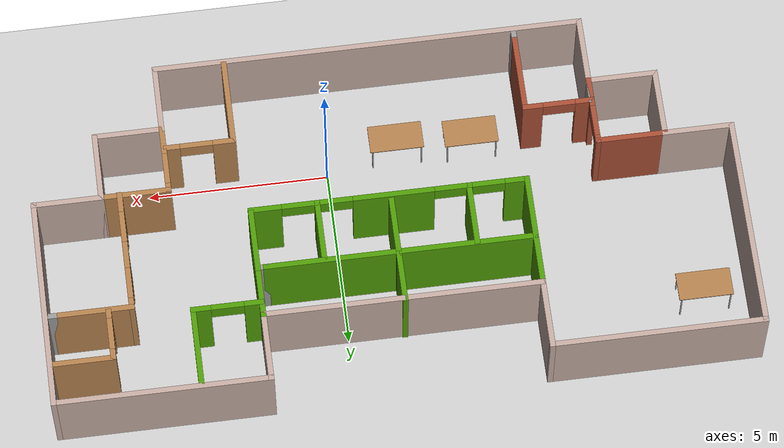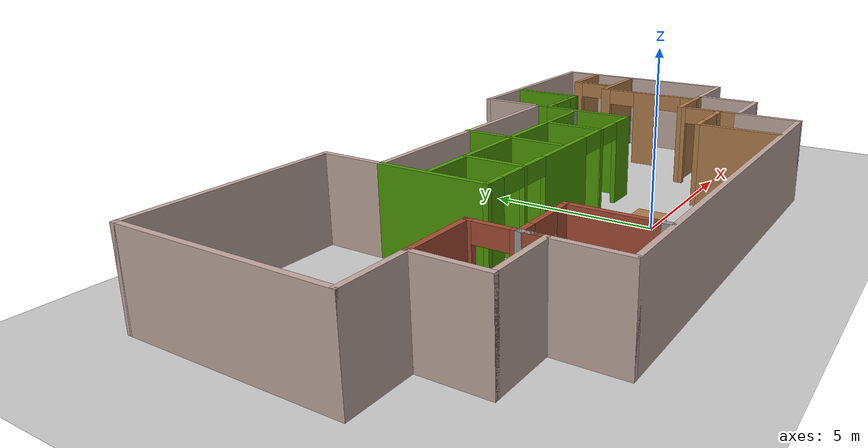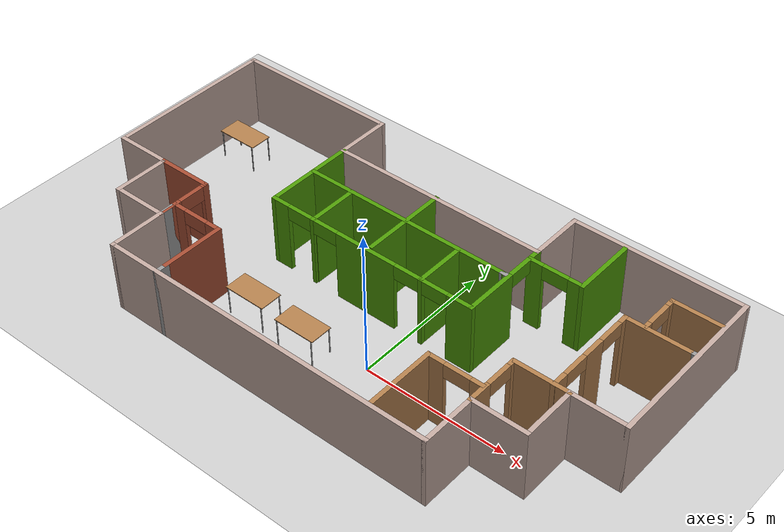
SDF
<sdf version="1.6">
 <world name="default">
  <model name="ground_plane">
   <static>1</static>
   <link name="link">
    <collision name="collision">
     <geometry><plane><normal>0 0 1</normal><size>100 100</size></plane></geometry>
     <surface>
      <contact><collide_bitmask>65535</collide_bitmask></contact>
      <friction><ode><mu>100</mu><mu2>50</mu2></ode></friction>
     </surface>
    </collision>
    <visual name="visual">
     <cast_shadows>0</cast_shadows>
     <geometry><plane><normal>0 0 1</normal><size>100 100</size></plane></geometry>
     <material>
      <script><uri>file://media/materials/scripts/gazebo.material</uri><name>Gazebo/Grey</name></script>
     </material>
    </visual>
   </link>
  </model>
  <model name="office">
   <pose>-1.48529 2.04777 0 0 -0 0</pose>
   <link name="Wall_10">
    <collision name="Wall_10_Collision">
     <geometry><box><size>2 0.15 2.5</size></box></geometry>
     <pose>0 0 1.25 0 -0 0</pose>
    </collision>
    <visual name="Wall_10_Visual">
     <pose>0 0 1.25 0 -0 0</pose>
     <geometry><box><size>2 0.15 2.5</size></box></geometry>
     <material>
      <script><uri>file://media/materials/scripts/gazebo.material</uri><name>Gazebo/Grey</name></script>
      <ambient>0.760784 0.662745 0.627451 1</ambient>
     </material>
     <meta><layer>0</layer></meta>
    </visual>
    <pose>6.85 -2.925 0 0 -0 0</pose>
   </link>
   <link name="Wall_11">
    <collision name="Wall_11_Collision">
     <geometry><box><size>2 0.15 2.5</size></box></geometry>
     <pose>0 0 1.25 0 -0 0</pose>
    </collision>
    <visual name="Wall_11_Visual">
     <pose>0 0 1.25 0 -0 0</pose>
     <geometry><box><size>2 0.15 2.5</size></box></geometry>
     <material>
      <script><uri>file://media/materials/scripts/gazebo.material</uri><name>Gazebo/Grey</name></script>
      <ambient>0.760784 0.662745 0.627451 1</ambient>
     </material>
     <meta><layer>0</layer></meta>
    </visual>
    <pose>7.775 -2 0 0 -0 1.5708</pose>
   </link>
   <link name="Wall_12">
    <collision name="Wall_12_Collision">
     <geometry><box><size>2 0.15 2.5</size></box></geometry>
     <pose>0 0 1.25 0 -0 0</pose>
    </collision>
    <visual name="Wall_12_Visual">
     <pose>0 0 1.25 0 -0 0</pose>
     <geometry><box><size>2 0.15 2.5</size></box></geometry>
     <material>
      <script><uri>file://media/materials/scripts/gazebo.material</uri><name>Gazebo/Grey</name></script>
      <ambient>0.760784 0.662745 0.627451 1</ambient>
     </material>
     <meta><layer>0</layer></meta>
    </visual>
    <pose>8.7 -1.075 0 0 -0 0</pose>
   </link>
   <link name="Wall_13">
    <collision name="Wall_13_Collision">
     <geometry><box><size>6 0.15 2.5</size></box></geometry>
     <pose>0 0 1.25 0 -0 0</pose>
    </collision>
    <visual name="Wall_13_Visual">
     <pose>0 0 1.25 0 -0 0</pose>
     <geometry><box><size>6 0.15 2.5</size></box></geometry>
     <material>
      <script><uri>file://media/materials/scripts/gazebo.material</uri><name>Gazebo/Grey</name></script>
      <ambient>0.760784 0.662745 0.627451 1</ambient>
     </material>
     <meta><layer>0</layer></meta>
    </visual>
    <pose>9.625 1.85 0 0 -0 1.5708</pose>
   </link>
   <link name="Wall_14">
    <collision name="Wall_14_Collision">
     <geometry><box><size>6 0.15 2.5</size></box></geometry>
     <pose>0 0 1.25 0 -0 0</pose>
    </collision>
    <visual name="Wall_14_Visual">
     <pose>0 0 1.25 0 -0 0</pose>
     <geometry><box><size>6 0.15 2.5</size></box></geometry>
     <material>
      <script><uri>file://media/materials/scripts/gazebo.material</uri><name>Gazebo/Grey</name></script>
      <ambient>0.760784 0.662745 0.627451 1</ambient>
     </material>
     <meta><layer>0</layer></meta>
    </visual>
    <pose>6.7 4.775 0 0 -0 3.14159</pose>
   </link>
   <link name="Wall_15">
    <collision name="Wall_15_Collision">
     <geometry><box><size>2 0.15 2.5</size></box></geometry>
     <pose>0 0 1.25 0 -0 0</pose>
    </collision>
    <visual name="Wall_15_Visual">
     <pose>0 0 1.25 0 -0 0</pose>
     <geometry><box><size>2 0.15 2.5</size></box></geometry>
     <material>
      <script><uri>file://media/materials/scripts/gazebo.material</uri><name>Gazebo/Grey</name></script>
      <ambient>0.760784 0.662745 0.627451 1</ambient>
     </material>
     <meta><layer>0</layer></meta>
    </visual>
    <pose>3.775 3.85 0 0 -0 -1.5708</pose>
   </link>
   <link name="Wall_16">
    <collision name="Wall_16_Collision">
     <geometry><box><size>7.75 0.15 2.5</size></box></geometry>
     <pose>0 0 1.25 0 -0 0</pose>
    </collision>
    <visual name="Wall_16_Visual">
     <pose>0 0 1.25 0 -0 0</pose>
     <geometry><box><size>7.75 0.15 2.5</size></box></geometry>
     <material>
      <script><uri>file://media/materials/scripts/gazebo.material</uri><name>Gazebo/Grey</name></script>
      <ambient>0.760784 0.662745 0.627451 1</ambient>
     </material>
     <meta><layer>0</layer></meta>
    </visual>
    <pose>-0.025 2.925 0 0 -0 3.14159</pose>
   </link>
   <link name="Wall_17">
    <collision name="Wall_17_Collision">
     <geometry><box><size>2 0.15 2.5</size></box></geometry>
     <pose>0 0 1.25 0 -0 0</pose>
    </collision>
    <visual name="Wall_17_Visual">
     <pose>0 0 1.25 0 -0 0</pose>
     <geometry><box><size>2 0.15 2.5</size></box></geometry>
     <material>
      <script><uri>file://media/materials/scripts/gazebo.material</uri><name>Gazebo/Grey</name></script>
      <ambient>0.760784 0.662745 0.627451 1</ambient>
     </material>
     <meta><layer>0</layer></meta>
    </visual>
    <pose>-3.825 3.85 0 0 -0 1.5708</pose>
   </link>
   <link name="Wall_18">
    <collision name="Wall_18_Collision">
     <geometry><box><size>5.95 0.15 2.5</size></box></geometry>
     <pose>0 0 1.25 0 -0 0</pose>
    </collision>
    <visual name="Wall_18_Visual">
     <pose>0 0 1.25 0 -0 0</pose>
     <geometry><box><size>5.95 0.15 2.5</size></box></geometry>
     <material>
      <script><uri>file://media/materials/scripts/gazebo.material</uri><name>Gazebo/Grey</name></script>
      <ambient>0.760784 0.662745 0.627451 1</ambient>
     </material>
     <meta><layer>0</layer></meta>
    </visual>
    <pose>-6.725 4.775 0 0 -0 3.14159</pose>
   </link>
   <link name="Wall_19">
    <collision name="Wall_19_Collision">
     <geometry><box><size>0.15 0.15 2.5</size></box></geometry>
     <pose>0 0 1.25 0 -0 0</pose>
    </collision>
    <visual name="Wall_19_Visual">
     <pose>0 0 1.25 0 -0 0</pose>
     <geometry><box><size>0.15 0.15 2.5</size></box></geometry>
     <material>
      <script><uri>file://media/materials/scripts/gazebo.material</uri><name>Gazebo/Grey</name></script>
      <ambient>0.760784 0.662745 0.627451 1</ambient>
     </material>
     <meta><layer>0</layer></meta>
    </visual>
    <pose>-9.625 4.775 0 0 -0 0</pose>
   </link>
   <link name="Wall_2">
    <collision name="Wall_2_Collision">
     <geometry><box><size>6 0.15 2.5</size></box></geometry>
     <pose>0 0 1.25 0 -0 0</pose>
    </collision>
    <visual name="Wall_2_Visual">
     <pose>0 0 1.25 0 -0 0</pose>
     <geometry><box><size>6 0.15 2.5</size></box></geometry>
     <material>
      <script><uri>file://media/materials/scripts/gazebo.material</uri><name>Gazebo/Grey</name></script>
      <ambient>0.760784 0.662745 0.627451 1</ambient>
     </material>
     <meta><layer>0</layer></meta>
    </visual>
    <pose>-9.625 1.85 0 0 -0 -1.5708</pose>
   </link>
   <link name="Wall_21">
    <collision name="Wall_21_Collision">
     <geometry><box><size>2 0.15 2.5</size></box></geometry>
     <pose>0 0 1.25 0 -0 0</pose>
    </collision>
    <visual name="Wall_21_Visual">
     <pose>0 0 1.25 0 -0 0</pose>
     <geometry><box><size>2 0.15 2.5</size></box></geometry>
     <material>
      <script><uri>file://media/materials/scripts/gazebo.material</uri><name>Gazebo/Bricks</name></script>
      <ambient>1 0.764706 0.305882 1</ambient>
     </material>
     <meta><layer>0</layer></meta>
    </visual>
    <pose>-6.85 -1.075 0 0 -0 0</pose>
   </link>
   <link name="Wall_22">
    <pose>-5.925 -2 0 0 -0 -1.5708</pose>
    <visual name="Wall_22_Visual_0">
     <pose>-0.880847 0 1.25 0 -0 0</pose>
     <geometry><box><size>0.238307 0.15 2.5</size></box></geometry>
     <material>
      <script><uri>file://media/materials/scripts/gazebo.material</uri><name>Gazebo/Bricks</name></script>
      <ambient>1 0.764706 0.305882 1</ambient>
     </material>
     <meta><layer>0</layer></meta>
    </visual>
    <collision name="Wall_22_Collision_0">
     <geometry><box><size>0.238307 0.15 2.5</size></box></geometry>
     <pose>-0.880847 0 1.25 0 -0 0</pose>
    </collision>
    <visual name="Wall_22_Visual_1">
     <pose>0.569153 0 1.25 0 -0 0</pose>
     <geometry><box><size>0.861693 0.15 2.5</size></box></geometry>
     <material>
      <script><uri>file://media/materials/scripts/gazebo.material</uri><name>Gazebo/Bricks</name></script>
      <ambient>1 0.764706 0.305882 1</ambient>
     </material>
     <meta><layer>0</layer></meta>
    </visual>
    <collision name="Wall_22_Collision_1">
     <geometry><box><size>0.861693 0.15 2.5</size></box></geometry>
     <pose>0.569153 0 1.25 0 -0 0</pose>
    </collision>
    <visual name="Wall_22_Visual_2">
     <pose>-0.311693 0 2.25 0 -0 0</pose>
     <geometry><box><size>0.9 0.15 0.5</size></box></geometry>
     <material>
      <script><uri>file://media/materials/scripts/gazebo.material</uri><name>Gazebo/Bricks</name></script>
      <ambient>1 0.764706 0.305882 1</ambient>
     </material>
     <meta><layer>0</layer></meta>
    </visual>
    <collision name="Wall_22_Collision_2">
     <geometry><box><size>0.9 0.15 0.5</size></box></geometry>
     <pose>-0.311693 0 2.25 0 -0 0</pose>
    </collision>
   </link>
   <link name="Wall_23">
    <collision name="Wall_23_Collision">
     <geometry><box><size>0.75 0.15 2.5</size></box></geometry>
     <pose>0 0 1.25 0 -0 0</pose>
    </collision>
    <visual name="Wall_23_Visual">
     <pose>0 0 1.25 0 -0 0</pose>
     <geometry><box><size>0.75 0.15 2.5</size></box></geometry>
     <material>
      <script><uri>file://media/materials/scripts/gazebo.material</uri><name>Gazebo/Grey</name></script>
      <ambient>1 1 1 1</ambient>
     </material>
     <meta><layer>0</layer></meta>
    </visual>
    <pose>-5.925 -2.625 0 0 -0 1.5708</pose>
   </link>
   <link name="Wall_24">
    <pose>-5 -2.325 0 0 -0 0</pose>
    <visual name="Wall_24_Visual_0">
     <pose>-0.733979 0 1.25 0 -0 0</pose>
     <geometry><box><size>0.532042 0.15 2.5</size></box></geometry>
     <material>
      <script><uri>file://media/materials/scripts/gazebo.material</uri><name>Gazebo/Bricks</name></script>
      <ambient>1 0.764706 0.305882 1</ambient>
     </material>
     <meta><layer>0</layer></meta>
    </visual>
    <collision name="Wall_24_Collision_0">
     <geometry><box><size>0.532042 0.15 2.5</size></box></geometry>
     <pose>-0.733979 0 1.25 0 -0 0</pose>
    </collision>
    <visual name="Wall_24_Visual_1">
     <pose>0.716021 0 1.25 0 -0 0</pose>
     <geometry><box><size>0.567958 0.15 2.5</size></box></geometry>
     <material>
      <script><uri>file://media/materials/scripts/gazebo.material</uri><name>Gazebo/Bricks</name></script>
      <ambient>1 0.764706 0.305882 1</ambient>
     </material>
     <meta><layer>0</layer></meta>
    </visual>
    <collision name="Wall_24_Collision_1">
     <geometry><box><size>0.567958 0.15 2.5</size></box></geometry>
     <pose>0.716021 0 1.25 0 -0 0</pose>
    </collision>
    <visual name="Wall_24_Visual_2">
     <pose>-0.017958 0 2.25 0 -0 0</pose>
     <geometry><box><size>0.9 0.15 0.5</size></box></geometry>
     <material>
      <script><uri>file://media/materials/scripts/gazebo.material</uri><name>Gazebo/Bricks</name></script>
      <ambient>1 0.764706 0.305882 1</ambient>
     </material>
     <meta><layer>0</layer></meta>
    </visual>
    <collision name="Wall_24_Collision_2">
     <geometry><box><size>0.9 0.15 0.5</size></box></geometry>
     <pose>-0.017958 0 2.25 0 -0 0</pose>
    </collision>
   </link>
   <link name="Wall_25">
    <collision name="Wall_25_Collision">
     <geometry><box><size>2.25 0.15 2.5</size></box></geometry>
     <pose>0 0 1.25 0 -0 0</pose>
    </collision>
    <visual name="Wall_25_Visual">
     <pose>0 0 1.25 0 -0 0</pose>
     <geometry><box><size>2.25 0.15 2.5</size></box></geometry>
     <material>
      <script><uri>file://media/materials/scripts/gazebo.material</uri><name>Gazebo/Bricks</name></script>
      <ambient>1 0.764706 0.305882 1</ambient>
     </material>
     <meta><layer>0</layer></meta>
    </visual>
    <pose>-4.075 -3.375 0 0 -0 -1.5708</pose>
   </link>
   <link name="Wall_26">
    <collision name="Wall_26_Collision">
     <geometry><box><size>0.5 0.15 2.5</size></box></geometry>
     <pose>0 0 1.25 0 -0 0</pose>
    </collision>
    <visual name="Wall_26_Visual">
     <pose>0 0 1.25 0 -0 0</pose>
     <geometry><box><size>0.5 0.15 2.5</size></box></geometry>
     <material>
      <script><uri>file://media/materials/scripts/gazebo.material</uri><name>Gazebo/Grey</name></script>
      <ambient>1 1 1 1</ambient>
     </material>
     <meta><layer>0</layer></meta>
    </visual>
    <pose>-4.075 -4.6 0 0 -0 -1.5708</pose>
   </link>
   <link name="Wall_33">
    <collision name="Wall_33_Collision">
     <geometry><box><size>2 0.15 2.5</size></box></geometry>
     <pose>0 0 1.25 0 -0 0</pose>
    </collision>
    <visual name="Wall_33_Visual">
     <pose>0 0 1.25 0 -0 0</pose>
     <geometry><box><size>2 0.15 2.5</size></box></geometry>
     <material>
      <script><uri>file://media/materials/scripts/gazebo.material</uri><name>Gazebo/Wood</name></script>
      <ambient>0.996078 0.47451 0.0196078 1</ambient>
     </material>
     <meta><layer>0</layer></meta>
    </visual>
    <pose>6.85 -1.075 0 0 -0 3.14159</pose>
   </link>
   <link name="Wall_34">
    <pose>5.925 -2 0 0 -0 -1.5708</pose>
    <visual name="Wall_34_Visual_0">
     <pose>-0.860151 0 1.25 0 -0 0</pose>
     <geometry><box><size>0.279699 0.15 2.5</size></box></geometry>
     <material>
      <script><uri>file://media/materials/scripts/gazebo.material</uri><name>Gazebo/Wood</name></script>
      <ambient>0.996078 0.47451 0.0196078 1</ambient>
     </material>
     <meta><layer>0</layer></meta>
    </visual>
    <collision name="Wall_34_Collision_0">
     <geometry><box><size>0.279699 0.15 2.5</size></box></geometry>
     <pose>-0.860151 0 1.25 0 -0 0</pose>
    </collision>
    <visual name="Wall_34_Visual_1">
     <pose>0.589849 0 1.25 0 -0 0</pose>
     <geometry><box><size>0.820301 0.15 2.5</size></box></geometry>
     <material>
      <script><uri>file://media/materials/scripts/gazebo.material</uri><name>Gazebo/Wood</name></script>
      <ambient>0.996078 0.47451 0.0196078 1</ambient>
     </material>
     <meta><layer>0</layer></meta>
    </visual>
    <collision name="Wall_34_Collision_1">
     <geometry><box><size>0.820301 0.15 2.5</size></box></geometry>
     <pose>0.589849 0 1.25 0 -0 0</pose>
    </collision>
    <visual name="Wall_34_Visual_2">
     <pose>-0.270301 0 2.25 0 -0 0</pose>
     <geometry><box><size>0.9 0.15 0.5</size></box></geometry>
     <material>
      <script><uri>file://media/materials/scripts/gazebo.material</uri><name>Gazebo/Wood</name></script>
      <ambient>0.996078 0.47451 0.0196078 1</ambient>
     </material>
     <meta><layer>0</layer></meta>
    </visual>
    <collision name="Wall_34_Collision_2">
     <geometry><box><size>0.9 0.15 0.5</size></box></geometry>
     <pose>-0.270301 0 2.25 0 -0 0</pose>
    </collision>
   </link>
   <link name="Wall_36">
    <pose>4.93629 -2.34078 0 0 -0 3.14159</pose>
    <visual name="Wall_36_Visual_0">
     <pose>-0.772106 0 1.25 0 -0 0</pose>
     <geometry><box><size>0.455789 0.15 2.5</size></box></geometry>
     <material>
      <script><uri>file://media/materials/scripts/gazebo.material</uri><name>Gazebo/Wood</name></script>
      <ambient>0.996078 0.47451 0.0196078 1</ambient>
     </material>
     <meta><layer>0</layer></meta>
    </visual>
    <collision name="Wall_36_Collision_0">
     <geometry><box><size>0.455789 0.15 2.5</size></box></geometry>
     <pose>-0.772106 0 1.25 0 -0 0</pose>
    </collision>
    <visual name="Wall_36_Visual_1">
     <pose>0.677894 0 1.25 0 -0 0</pose>
     <geometry><box><size>0.644211 0.15 2.5</size></box></geometry>
     <material>
      <script><uri>file://media/materials/scripts/gazebo.material</uri><name>Gazebo/Wood</name></script>
      <ambient>0.996078 0.47451 0.0196078 1</ambient>
     </material>
     <meta><layer>0</layer></meta>
    </visual>
    <collision name="Wall_36_Collision_1">
     <geometry><box><size>0.644211 0.15 2.5</size></box></geometry>
     <pose>0.677894 0 1.25 0 -0 0</pose>
    </collision>
    <visual name="Wall_36_Visual_2">
     <pose>-0.094211 0 2.25 0 -0 0</pose>
     <geometry><box><size>0.9 0.15 0.5</size></box></geometry>
     <material>
      <script><uri>file://media/materials/scripts/gazebo.material</uri><name>Gazebo/Wood</name></script>
      <ambient>0.996078 0.47451 0.0196078 1</ambient>
     </material>
     <meta><layer>0</layer></meta>
    </visual>
    <collision name="Wall_36_Collision_2">
     <geometry><box><size>0.9 0.15 0.5</size></box></geometry>
     <pose>-0.094211 0 2.25 0 -0 0</pose>
    </collision>
   </link>
   <link name="Wall_37">
    <collision name="Wall_37_Collision">
     <geometry><box><size>2.5 0.15 2.5</size></box></geometry>
     <pose>0 0 1.25 0 -0 0</pose>
    </collision>
    <visual name="Wall_37_Visual">
     <pose>0 0 1.25 0 -0 0</pose>
     <geometry><box><size>2.5 0.15 2.5</size></box></geometry>
     <material>
      <script><uri>file://media/materials/scripts/gazebo.material</uri><name>Gazebo/Wood</name></script>
      <ambient>0.996078 0.47451 0.0196078 1</ambient>
     </material>
     <meta><layer>0</layer></meta>
    </visual>
    <pose>4.01129 -3.51578 0 0 -0 -1.5708</pose>
   </link>
   <link name="Wall_39">
    <pose>7.2711 0.584434 0 0 -0 1.5708</pose>
    <visual name="Wall_39_Visual_0">
     <pose>-1.45906 0 1.25 0 -0 0</pose>
     <geometry><box><size>0.581879 0.15 2.5</size></box></geometry>
     <material>
      <script><uri>file://media/materials/scripts/gazebo.material</uri><name>Gazebo/Wood</name></script>
      <ambient>0.996078 0.47451 0.0196078 1</ambient>
     </material>
     <meta><layer>0</layer></meta>
    </visual>
    <collision name="Wall_39_Collision_0">
     <geometry><box><size>0.581879 0.15 2.5</size></box></geometry>
     <pose>-1.45906 0 1.25 0 -0 0</pose>
    </collision>
    <visual name="Wall_39_Visual_1">
     <pose>0.119786 0 1.25 0 -0 0</pose>
     <geometry><box><size>0.775813 0.15 2.5</size></box></geometry>
     <material>
      <script><uri>file://media/materials/scripts/gazebo.material</uri><name>Gazebo/Wood</name></script>
      <ambient>0.996078 0.47451 0.0196078 1</ambient>
     </material>
     <meta><layer>0</layer></meta>
    </visual>
    <collision name="Wall_39_Collision_1">
     <geometry><box><size>0.775813 0.15 2.5</size></box></geometry>
     <pose>0.119786 0 1.25 0 -0 0</pose>
    </collision>
    <visual name="Wall_39_Visual_2">
     <pose>1.57885 0 1.25 0 -0 0</pose>
     <geometry><box><size>0.342308 0.15 2.5</size></box></geometry>
     <material>
      <script><uri>file://media/materials/scripts/gazebo.material</uri><name>Gazebo/Wood</name></script>
      <ambient>0.996078 0.47451 0.0196078 1</ambient>
     </material>
     <meta><layer>0</layer></meta>
    </visual>
    <collision name="Wall_39_Collision_2">
     <geometry><box><size>0.342308 0.15 2.5</size></box></geometry>
     <pose>1.57885 0 1.25 0 -0 0</pose>
    </collision>
    <visual name="Wall_39_Visual_3">
     <pose>-0.718121 0 2.25 0 -0 0</pose>
     <geometry><box><size>0.9 0.15 0.5</size></box></geometry>
     <material>
      <script><uri>file://media/materials/scripts/gazebo.material</uri><name>Gazebo/Wood</name></script>
      <ambient>0.996078 0.47451 0.0196078 1</ambient>
     </material>
     <meta><layer>0</layer></meta>
    </visual>
    <collision name="Wall_39_Collision_3">
     <geometry><box><size>0.9 0.15 0.5</size></box></geometry>
     <pose>-0.718121 0 2.25 0 -0 0</pose>
    </collision>
    <visual name="Wall_39_Visual_4">
     <pose>0.957692 0 2.25 0 -0 0</pose>
     <geometry><box><size>0.9 0.15 0.5</size></box></geometry>
     <material>
      <script><uri>file://media/materials/scripts/gazebo.material</uri><name>Gazebo/Wood</name></script>
      <ambient>0.996078 0.47451 0.0196078 1</ambient>
     </material>
     <meta><layer>0</layer></meta>
    </visual>
    <collision name="Wall_39_Collision_4">
     <geometry><box><size>0.9 0.15 0.5</size></box></geometry>
     <pose>0.957692 0 2.25 0 -0 0</pose>
    </collision>
   </link>
   <link name="Wall_4">
    <collision name="Wall_4_Collision">
     <geometry><box><size>2 0.15 2.5</size></box></geometry>
     <pose>0 0 1.25 0 -0 0</pose>
    </collision>
    <visual name="Wall_4_Visual">
     <pose>0 0 1.25 0 -0 0</pose>
     <geometry><box><size>2 0.15 2.5</size></box></geometry>
     <material>
      <script><uri>file://media/materials/scripts/gazebo.material</uri><name>Gazebo/Grey</name></script>
      <ambient>0.760784 0.662745 0.627451 1</ambient>
     </material>
     <meta><layer>0</layer></meta>
    </visual>
    <pose>-8.7 -1.075 0 0 -0 0</pose>
   </link>
   <link name="Wall_40">
    <collision name="Wall_40_Collision">
     <geometry><box><size>2.25 0.15 2.5</size></box></geometry>
     <pose>0 0 1.25 0 -0 0</pose>
    </collision>
    <visual name="Wall_40_Visual">
     <pose>0 0 1.25 0 -0 0</pose>
     <geometry><box><size>2.25 0.15 2.5</size></box></geometry>
     <material>
      <script><uri>file://media/materials/scripts/gazebo.material</uri><name>Gazebo/Wood</name></script>
      <ambient>0.996078 0.47451 0.0196078 1</ambient>
     </material>
     <meta><layer>0</layer></meta>
    </visual>
    <pose>8.3211 2.25943 0 0 -0 0</pose>
   </link>
   <link name="Wall_41">
    <collision name="Wall_41_Collision">
     <geometry><box><size>0.25 0.15 2.5</size></box></geometry>
     <pose>0 0 1.25 0 -0 0</pose>
    </collision>
    <visual name="Wall_41_Visual">
     <pose>0 0 1.25 0 -0 0</pose>
     <geometry><box><size>0.25 0.15 2.5</size></box></geometry>
     <material>
      <script><uri>file://media/materials/scripts/gazebo.material</uri><name>Gazebo/Grey</name></script>
      <ambient>1 1 1 1</ambient>
     </material>
     <meta><layer>0</layer></meta>
    </visual>
    <pose>9.4211 2.25943 0 0 -0 0</pose>
   </link>
   <link name="Wall_43">
    <pose>7.9095 2.98926 0 0 -0 1.5708</pose>
    <visual name="Wall_43_Visual_0">
     <pose>-0.612012 0 1.25 0 -0 0</pose>
     <geometry><box><size>0.275977 0.15 2.5</size></box></geometry>
     <material>
      <script><uri>file://media/materials/scripts/gazebo.material</uri><name>Gazebo/Wood</name></script>
      <ambient>0.996078 0.47451 0.0196078 1</ambient>
     </material>
     <meta><layer>0</layer></meta>
    </visual>
    <collision name="Wall_43_Collision_0">
     <geometry><box><size>0.275977 0.15 2.5</size></box></geometry>
     <pose>-0.612012 0 1.25 0 -0 0</pose>
    </collision>
    <visual name="Wall_43_Visual_1">
     <pose>0.587988 0 1.25 0 -0 0</pose>
     <geometry><box><size>0.324023 0.15 2.5</size></box></geometry>
     <material>
      <script><uri>file://media/materials/scripts/gazebo.material</uri><name>Gazebo/Wood</name></script>
      <ambient>0.996078 0.47451 0.0196078 1</ambient>
     </material>
     <meta><layer>0</layer></meta>
    </visual>
    <collision name="Wall_43_Collision_1">
     <geometry><box><size>0.324023 0.15 2.5</size></box></geometry>
     <pose>0.587988 0 1.25 0 -0 0</pose>
    </collision>
    <visual name="Wall_43_Visual_2">
     <pose>-0.024023 0 2.25 0 -0 0</pose>
     <geometry><box><size>0.9 0.15 0.5</size></box></geometry>
     <material>
      <script><uri>file://media/materials/scripts/gazebo.material</uri><name>Gazebo/Wood</name></script>
      <ambient>0.996078 0.47451 0.0196078 1</ambient>
     </material>
     <meta><layer>0</layer></meta>
    </visual>
    <collision name="Wall_43_Collision_2">
     <geometry><box><size>0.9 0.15 0.5</size></box></geometry>
     <pose>-0.024023 0 2.25 0 -0 0</pose>
    </collision>
   </link>
   <link name="Wall_44">
    <collision name="Wall_44_Collision">
     <geometry><box><size>1.75 0.15 2.5</size></box></geometry>
     <pose>0 0 1.25 0 -0 0</pose>
    </collision>
    <visual name="Wall_44_Visual">
     <pose>0 0 1.25 0 -0 0</pose>
     <geometry><box><size>1.75 0.15 2.5</size></box></geometry>
     <material>
      <script><uri>file://media/materials/scripts/gazebo.material</uri><name>Gazebo/Wood</name></script>
      <ambient>0.996078 0.47451 0.0196078 1</ambient>
     </material>
     <meta><layer>0</layer></meta>
    </visual>
    <pose>8.7095 3.66426 0 0 -0 0</pose>
   </link>
   <link name="Wall_46">
    <pose>3.775 1.375 0 0 -0 -1.5708</pose>
    <visual name="Wall_46_Visual_0">
     <pose>-1.39372 0 1.25 0 -0 0</pose>
     <geometry><box><size>0.46257 0.15 2.5</size></box></geometry>
     <material>
      <script><uri>file://media/materials/scripts/gazebo.material</uri><name>Gazebo/Grey</name></script>
      <ambient>0.305882 0.603922 0.0235294 1</ambient>
     </material>
     <meta><layer>0</layer></meta>
    </visual>
    <collision name="Wall_46_Collision_0">
     <geometry><box><size>0.46257 0.15 2.5</size></box></geometry>
     <pose>-1.39372 0 1.25 0 -0 0</pose>
    </collision>
    <visual name="Wall_46_Visual_1">
     <pose>0.681285 0 1.25 0 -0 0</pose>
     <geometry><box><size>1.88743 0.15 2.5</size></box></geometry>
     <material>
      <script><uri>file://media/materials/scripts/gazebo.material</uri><name>Gazebo/Grey</name></script>
      <ambient>0.305882 0.603922 0.0235294 1</ambient>
     </material>
     <meta><layer>0</layer></meta>
    </visual>
    <collision name="Wall_46_Collision_1">
     <geometry><box><size>1.88743 0.15 2.5</size></box></geometry>
     <pose>0.681285 0 1.25 0 -0 0</pose>
    </collision>
    <visual name="Wall_46_Visual_2">
     <pose>-0.71243 0 2.25 0 -0 0</pose>
     <geometry><box><size>0.9 0.15 0.5</size></box></geometry>
     <material>
      <script><uri>file://media/materials/scripts/gazebo.material</uri><name>Gazebo/Grey</name></script>
      <ambient>0.305882 0.603922 0.0235294 1</ambient>
     </material>
     <meta><layer>0</layer></meta>
    </visual>
    <collision name="Wall_46_Collision_2">
     <geometry><box><size>0.9 0.15 0.5</size></box></geometry>
     <pose>-0.71243 0 2.25 0 -0 0</pose>
    </collision>
   </link>
   <link name="Wall_47">
    <pose>-0.025 -0.175 0 0 -0 3.14159</pose>
    <visual name="Wall_47_Visual_0">
     <pose>-3.41344 0 1.25 0 -0 0</pose>
     <geometry><box><size>0.92312 0.15 2.5</size></box></geometry>
     <material>
      <script><uri>file://media/materials/scripts/gazebo.material</uri><name>Gazebo/Grey</name></script>
      <ambient>0.305882 0.603922 0.0235294 1</ambient>
     </material>
     <meta><layer>0</layer></meta>
    </visual>
    <collision name="Wall_47_Collision_0">
     <geometry><box><size>0.92312 0.15 2.5</size></box></geometry>
     <pose>-3.41344 0 1.25 0 -0 0</pose>
    </collision>
    <visual name="Wall_47_Visual_1">
     <pose>-1.97653 0 1.25 0 -0 0</pose>
     <geometry><box><size>0.150708 0.15 2.5</size></box></geometry>
     <material>
      <script><uri>file://media/materials/scripts/gazebo.material</uri><name>Gazebo/Grey</name></script>
      <ambient>0.305882 0.603922 0.0235294 1</ambient>
     </material>
     <meta><layer>0</layer></meta>
    </visual>
    <collision name="Wall_47_Collision_1">
     <geometry><box><size>0.150708 0.15 2.5</size></box></geometry>
     <pose>-1.97653 0 1.25 0 -0 0</pose>
    </collision>
    <visual name="Wall_47_Visual_2">
     <pose>0.124889 0 1.25 0 -0 0</pose>
     <geometry><box><size>2.25212 0.15 2.5</size></box></geometry>
     <material>
      <script><uri>file://media/materials/scripts/gazebo.material</uri><name>Gazebo/Grey</name></script>
      <ambient>0.305882 0.603922 0.0235294 1</ambient>
     </material>
     <meta><layer>0</layer></meta>
    </visual>
    <collision name="Wall_47_Collision_2">
     <geometry><box><size>2.25212 0.15 2.5</size></box></geometry>
     <pose>0.124889 0 1.25 0 -0 0</pose>
    </collision>
    <visual name="Wall_47_Visual_3">
     <pose>2.21965 0 1.25 0 -0 0</pose>
     <geometry><box><size>0.137408 0.15 2.5</size></box></geometry>
     <material>
      <script><uri>file://media/materials/scripts/gazebo.material</uri><name>Gazebo/Grey</name></script>
      <ambient>0.305882 0.603922 0.0235294 1</ambient>
     </material>
     <meta><layer>0</layer></meta>
    </visual>
    <collision name="Wall_47_Collision_3">
     <geometry><box><size>0.137408 0.15 2.5</size></box></geometry>
     <pose>2.21965 0 1.25 0 -0 0</pose>
    </collision>
    <visual name="Wall_47_Visual_4">
     <pose>3.53168 0 1.25 0 -0 0</pose>
     <geometry><box><size>0.686641 0.15 2.5</size></box></geometry>
     <material>
      <script><uri>file://media/materials/scripts/gazebo.material</uri><name>Gazebo/Grey</name></script>
      <ambient>0.305882 0.603922 0.0235294 1</ambient>
     </material>
     <meta><layer>0</layer></meta>
    </visual>
    <collision name="Wall_47_Collision_4">
     <geometry><box><size>0.686641 0.15 2.5</size></box></geometry>
     <pose>3.53168 0 1.25 0 -0 0</pose>
    </collision>
    <visual name="Wall_47_Visual_5">
     <pose>-2.50188 0 2.25 0 -0 0</pose>
     <geometry><box><size>0.9 0.15 0.5</size></box></geometry>
     <material>
      <script><uri>file://media/materials/scripts/gazebo.material</uri><name>Gazebo/Grey</name></script>
      <ambient>0.305882 0.603922 0.0235294 1</ambient>
     </material>
     <meta><layer>0</layer></meta>
    </visual>
    <collision name="Wall_47_Collision_5">
     <geometry><box><size>0.9 0.15 0.5</size></box></geometry>
     <pose>-2.50188 0 2.25 0 -0 0</pose>
    </collision>
    <visual name="Wall_47_Visual_6">
     <pose>-1.45117 0 2.25 0 -0 0</pose>
     <geometry><box><size>0.9 0.15 0.5</size></box></geometry>
     <material>
      <script><uri>file://media/materials/scripts/gazebo.material</uri><name>Gazebo/Grey</name></script>
      <ambient>0.305882 0.603922 0.0235294 1</ambient>
     </material>
     <meta><layer>0</layer></meta>
    </visual>
    <collision name="Wall_47_Collision_6">
     <geometry><box><size>0.9 0.15 0.5</size></box></geometry>
     <pose>-1.45117 0 2.25 0 -0 0</pose>
    </collision>
    <visual name="Wall_47_Visual_7">
     <pose>1.70095 0 2.25 0 -0 0</pose>
     <geometry><box><size>0.9 0.15 0.5</size></box></geometry>
     <material>
      <script><uri>file://media/materials/scripts/gazebo.material</uri><name>Gazebo/Grey</name></script>
      <ambient>0.305882 0.603922 0.0235294 1</ambient>
     </material>
     <meta><layer>0</layer></meta>
    </visual>
    <collision name="Wall_47_Collision_7">
     <geometry><box><size>0.9 0.15 0.5</size></box></geometry>
     <pose>1.70095 0 2.25 0 -0 0</pose>
    </collision>
    <visual name="Wall_47_Visual_8">
     <pose>2.73836 0 2.25 0 -0 0</pose>
     <geometry><box><size>0.9 0.15 0.5</size></box></geometry>
     <material>
      <script><uri>file://media/materials/scripts/gazebo.material</uri><name>Gazebo/Grey</name></script>
      <ambient>0.305882 0.603922 0.0235294 1</ambient>
     </material>
     <meta><layer>0</layer></meta>
    </visual>
    <collision name="Wall_47_Collision_8">
     <geometry><box><size>0.9 0.15 0.5</size></box></geometry>
     <pose>2.73836 0 2.25 0 -0 0</pose>
    </collision>
   </link>
   <link name="Wall_48">
    <collision name="Wall_48_Collision">
     <geometry><box><size>3.25 0.15 2.5</size></box></geometry>
     <pose>0 0 1.25 0 -0 0</pose>
    </collision>
    <visual name="Wall_48_Visual">
     <pose>0 0 1.25 0 -0 0</pose>
     <geometry><box><size>3.25 0.15 2.5</size></box></geometry>
     <material>
      <script><uri>file://media/materials/scripts/gazebo.material</uri><name>Gazebo/Grey</name></script>
      <ambient>0.305882 0.603922 0.0235294 1</ambient>
     </material>
     <meta><layer>0</layer></meta>
    </visual>
    <pose>-3.825 1.375 0 0 -0 1.5708</pose>
   </link>
   <link name="Wall_5">
    <collision name="Wall_5_Collision">
     <geometry><box><size>2 0.15 2.5</size></box></geometry>
     <pose>0 0 1.25 0 -0 0</pose>
    </collision>
    <visual name="Wall_5_Visual">
     <pose>0 0 1.25 0 -0 0</pose>
     <geometry><box><size>2 0.15 2.5</size></box></geometry>
     <material>
      <script><uri>file://media/materials/scripts/gazebo.material</uri><name>Gazebo/Grey</name></script>
      <ambient>0.760784 0.662745 0.627451 1</ambient>
     </material>
     <meta><layer>0</layer></meta>
    </visual>
    <pose>-7.775 -2 0 0 -0 -1.5708</pose>
   </link>
   <link name="Wall_50">
    <collision name="Wall_50_Collision">
     <geometry><box><size>7.5 0.15 2.5</size></box></geometry>
     <pose>0 0 1.25 0 -0 0</pose>
    </collision>
    <visual name="Wall_50_Visual">
     <pose>0 0 1.25 0 -0 0</pose>
     <geometry><box><size>7.5 0.15 2.5</size></box></geometry>
     <material>
      <script><uri>file://media/materials/scripts/gazebo.material</uri><name>Gazebo/Grey</name></script>
      <ambient>0.305882 0.603922 0.0235294 1</ambient>
     </material>
     <meta><layer>0</layer></meta>
    </visual>
    <pose>-0.119584 1.54285 0 0 -0 0</pose>
   </link>
   <link name="Wall_51">
    <collision name="Wall_51_Collision">
     <geometry><box><size>0.25 0.15 2.5</size></box></geometry>
     <pose>0 0 1.25 0 -0 0</pose>
    </collision>
    <visual name="Wall_51_Visual">
     <pose>0 0 1.25 0 -0 0</pose>
     <geometry><box><size>0.25 0.15 2.5</size></box></geometry>
     <material>
      <script><uri>file://media/materials/scripts/gazebo.material</uri><name>Gazebo/Grey</name></script>
      <ambient>1 1 1 1</ambient>
     </material>
     <meta><layer>0</layer></meta>
    </visual>
    <pose>3.60542 1.54285 0 0 -0 0</pose>
   </link>
   <link name="Wall_55">
    <collision name="Wall_55_Collision">
     <geometry><box><size>1.5 0.15 2.5</size></box></geometry>
     <pose>0 0 1.25 0 -0 0</pose>
    </collision>
    <visual name="Wall_55_Visual">
     <pose>0 0 1.25 0 -0 0</pose>
     <geometry><box><size>1.5 0.15 2.5</size></box></geometry>
     <material>
      <script><uri>file://media/materials/scripts/gazebo.material</uri><name>Gazebo/Grey</name></script>
      <ambient>0.305882 0.603922 0.0235294 1</ambient>
     </material>
     <meta><layer>0</layer></meta>
    </visual>
    <pose>-0.070556 2.27766 0 0 -0 -1.5708</pose>
   </link>
   <link name="Wall_57">
    <collision name="Wall_57_Collision">
     <geometry><box><size>1.75 0.15 2.5</size></box></geometry>
     <pose>0 0 1.25 0 -0 0</pose>
    </collision>
    <visual name="Wall_57_Visual">
     <pose>0 0 1.25 0 -0 0</pose>
     <geometry><box><size>1.75 0.15 2.5</size></box></geometry>
     <material>
      <script><uri>file://media/materials/scripts/gazebo.material</uri><name>Gazebo/Grey</name></script>
      <ambient>0.305882 0.603922 0.0235294 1</ambient>
     </material>
     <meta><layer>0</layer></meta>
    </visual>
    <pose>-2.22517 0.716253 0 0 -0 -1.5708</pose>
   </link>
   <link name="Wall_6">
    <collision name="Wall_6_Collision">
     <geometry><box><size>2 0.15 2.5</size></box></geometry>
     <pose>0 0 1.25 0 -0 0</pose>
    </collision>
    <visual name="Wall_6_Visual">
     <pose>0 0 1.25 0 -0 0</pose>
     <geometry><box><size>2 0.15 2.5</size></box></geometry>
     <material>
      <script><uri>file://media/materials/scripts/gazebo.material</uri><name>Gazebo/Grey</name></script>
      <ambient>0.760784 0.662745 0.627451 1</ambient>
     </material>
     <meta><layer>0</layer></meta>
    </visual>
    <pose>-6.85 -2.925 0 0 -0 0</pose>
   </link>
   <link name="Wall_61">
    <collision name="Wall_61_Collision">
     <geometry><box><size>1.75 0.15 2.5</size></box></geometry>
     <pose>0 0 1.25 0 -0 0</pose>
    </collision>
    <visual name="Wall_61_Visual">
     <pose>0 0 1.25 0 -0 0</pose>
     <geometry><box><size>1.75 0.15 2.5</size></box></geometry>
     <material>
      <script><uri>file://media/materials/scripts/gazebo.material</uri><name>Gazebo/Grey</name></script>
      <ambient>0.305882 0.603922 0.0235294 1</ambient>
     </material>
     <meta><layer>0</layer></meta>
    </visual>
    <pose>-0.070556 0.802664 0 0 -0 -1.5708</pose>
   </link>
   <link name="Wall_63">
    <collision name="Wall_63_Collision">
     <geometry><box><size>1.75 0.15 2.5</size></box></geometry>
     <pose>0 0 1.25 0 -0 0</pose>
    </collision>
    <visual name="Wall_63_Visual">
     <pose>0 0 1.25 0 -0 0</pose>
     <geometry><box><size>1.75 0.15 2.5</size></box></geometry>
     <material>
      <script><uri>file://media/materials/scripts/gazebo.material</uri><name>Gazebo/Grey</name></script>
      <ambient>0.305882 0.603922 0.0235294 1</ambient>
     </material>
     <meta><layer>0</layer></meta>
    </visual>
    <pose>1.95106 0.663053 0 0 -0 -1.5708</pose>
   </link>
   <link name="Wall_67">
    <pose>4.71859 2.55293 0 0 -0 0</pose>
    <visual name="Wall_67_Visual_0">
     <pose>-0.728647 0 1.25 0 -0 0</pose>
     <geometry><box><size>0.542707 0.15 2.5</size></box></geometry>
     <material>
      <script><uri>file://media/materials/scripts/gazebo.material</uri><name>Gazebo/Grey</name></script>
      <ambient>0.305882 0.603922 0.0235294 1</ambient>
     </material>
     <meta><layer>0</layer></meta>
    </visual>
    <collision name="Wall_67_Collision_0">
     <geometry><box><size>0.542707 0.15 2.5</size></box></geometry>
     <pose>-0.728647 0 1.25 0 -0 0</pose>
    </collision>
    <visual name="Wall_67_Visual_1">
     <pose>0.721353 0 1.25 0 -0 0</pose>
     <geometry><box><size>0.557293 0.15 2.5</size></box></geometry>
     <material>
      <script><uri>file://media/materials/scripts/gazebo.material</uri><name>Gazebo/Grey</name></script>
      <ambient>0.305882 0.603922 0.0235294 1</ambient>
     </material>
     <meta><layer>0</layer></meta>
    </visual>
    <collision name="Wall_67_Collision_1">
     <geometry><box><size>0.557293 0.15 2.5</size></box></geometry>
     <pose>0.721353 0 1.25 0 -0 0</pose>
    </collision>
    <visual name="Wall_67_Visual_2">
     <pose>-0.007293 0 2.25 0 -0 0</pose>
     <geometry><box><size>0.9 0.15 0.5</size></box></geometry>
     <material>
      <script><uri>file://media/materials/scripts/gazebo.material</uri><name>Gazebo/Grey</name></script>
      <ambient>0.305882 0.603922 0.0235294 1</ambient>
     </material>
     <meta><layer>0</layer></meta>
    </visual>
    <collision name="Wall_67_Collision_2">
     <geometry><box><size>0.9 0.15 0.5</size></box></geometry>
     <pose>-0.007293 0 2.25 0 -0 0</pose>
    </collision>
   </link>
   <link name="Wall_68">
    <collision name="Wall_68_Collision">
     <geometry><box><size>2.25 0.15 2.5</size></box></geometry>
     <pose>0 0 1.25 0 -0 0</pose>
    </collision>
    <visual name="Wall_68_Visual">
     <pose>0 0 1.25 0 -0 0</pose>
     <geometry><box><size>2.25 0.15 2.5</size></box></geometry>
     <material>
      <script><uri>file://media/materials/scripts/gazebo.material</uri><name>Gazebo/Grey</name></script>
      <ambient>0.305882 0.603922 0.0235294 1</ambient>
     </material>
     <meta><layer>0</layer></meta>
    </visual>
    <pose>5.64359 3.60293 0 0 -0 1.5708</pose>
   </link>
   <link name="Wall_7">
    <collision name="Wall_7_Collision">
     <geometry><box><size>2 0.15 2.5</size></box></geometry>
     <pose>0 0 1.25 0 -0 0</pose>
    </collision>
    <visual name="Wall_7_Visual">
     <pose>0 0 1.25 0 -0 0</pose>
     <geometry><box><size>2 0.15 2.5</size></box></geometry>
     <material>
      <script><uri>file://media/materials/scripts/gazebo.material</uri><name>Gazebo/Grey</name></script>
      <ambient>0.760784 0.662745 0.627451 1</ambient>
     </material>
     <meta><layer>0</layer></meta>
    </visual>
    <pose>-5.925 -3.85 0 0 -0 -1.5708</pose>
   </link>
   <link name="Wall_8">
    <collision name="Wall_8_Collision">
     <geometry><box><size>12 0.15 2.5</size></box></geometry>
     <pose>0 0 1.25 0 -0 0</pose>
    </collision>
    <visual name="Wall_8_Visual">
     <pose>0 0 1.25 0 -0 0</pose>
     <geometry><box><size>12 0.15 2.5</size></box></geometry>
     <material>
      <script><uri>file://media/materials/scripts/gazebo.material</uri><name>Gazebo/Grey</name></script>
      <ambient>0.760784 0.662745 0.627451 1</ambient>
     </material>
     <meta><layer>0</layer></meta>
    </visual>
    <pose>-0 -4.775 0 0 -0 0</pose>
   </link>
   <link name="Wall_9">
    <collision name="Wall_9_Collision">
     <geometry><box><size>2 0.15 2.5</size></box></geometry>
     <pose>0 0 1.25 0 -0 0</pose>
    </collision>
    <visual name="Wall_9_Visual">
     <pose>0 0 1.25 0 -0 0</pose>
     <geometry><box><size>2 0.15 2.5</size></box></geometry>
     <material>
      <script><uri>file://media/materials/scripts/gazebo.material</uri><name>Gazebo/Grey</name></script>
      <ambient>0.760784 0.662745 0.627451 1</ambient>
     </material>
     <meta><layer>0</layer></meta>
    </visual>
    <pose>5.925 -3.85 0 0 -0 1.5708</pose>
   </link>
   <static>1</static>
  </model>
  <model name="table">
   <static>1</static>
   <link name="link">
    <collision name="surface">
     <pose>0 0 1 0 -0 0</pose>
     <geometry><box><size>1.5 0.8 0.03</size></box></geometry>
     <surface><friction><ode><mu>0.6</mu><mu2>0.6</mu2></ode></friction></surface>
    </collision>
    <visual name="visual1">
     <pose>0 0 1 0 -0 0</pose>
     <geometry><box><size>1.5 0.8 0.03</size></box></geometry>
     <material>
      <script><uri>file://media/materials/scripts/gazebo.material</uri><name>Gazebo/Wood</name></script>
     </material>
    </visual>
    <collision name="front_left_leg">
     <pose>0.68 0.38 0.5 0 -0 0</pose>
     <geometry><cylinder><radius>0.02</radius><length>1</length></cylinder></geometry>
    </collision>
    <visual name="front_left_leg">
     <pose>0.68 0.38 0.5 0 -0 0</pose>
     <geometry><cylinder><radius>0.02</radius><length>1</length></cylinder></geometry>
     <material>
      <script><uri>file://media/materials/scripts/gazebo.material</uri><name>Gazebo/Grey</name></script>
     </material>
    </visual>
    <collision name="front_right_leg">
     <pose>0.68 -0.38 0.5 0 -0 0</pose>
     <geometry><cylinder><radius>0.02</radius><length>1</length></cylinder></geometry>
    </collision>
    <visual name="front_right_leg">
     <pose>0.68 -0.38 0.5 0 -0 0</pose>
     <geometry><cylinder><radius>0.02</radius><length>1</length></cylinder></geometry>
     <material>
      <script><uri>file://media/materials/scripts/gazebo.material</uri><name>Gazebo/Grey</name></script>
     </material>
    </visual>
    <collision name="back_right_leg">
     <pose>-0.68 -0.38 0.5 0 -0 0</pose>
     <geometry><cylinder><radius>0.02</radius><length>1</length></cylinder></geometry>
    </collision>
    <visual name="back_right_leg">
     <pose>-0.68 -0.38 0.5 0 -0 0</pose>
     <geometry><cylinder><radius>0.02</radius><length>1</length></cylinder></geometry>
     <material>
      <script><uri>file://media/materials/scripts/gazebo.material</uri><name>Gazebo/Grey</name></script>
     </material>
    </visual>
    <collision name="back_left_leg">
     <pose>-0.68 0.38 0.5 0 -0 0</pose>
     <geometry><cylinder><radius>0.02</radius><length>1</length></cylinder></geometry>
    </collision>
    <visual name="back_left_leg">
     <pose>-0.68 0.38 0.5 0 -0 0</pose>
     <geometry><cylinder><radius>0.02</radius><length>1</length></cylinder></geometry>
     <material>
      <script><uri>file://media/materials/scripts/gazebo.material</uri><name>Gazebo/Grey</name></script>
     </material>
    </visual>
   </link>
   <pose>-4.07617 -0.449977 0 0 -0 0</pose>
  </model>
  <model name="table_clone">
   <static>1</static>
   <link name="link">
    <collision name="surface">
     <pose>0 0 1 0 -0 0</pose>
     <geometry><box><size>1.5 0.8 0.03</size></box></geometry>
     <surface><friction><ode><mu>0.6</mu><mu2>0.6</mu2></ode></friction></surface>
    </collision>
    <visual name="visual1">
     <pose>0 0 1 0 -0 0</pose>
     <geometry><box><size>1.5 0.8 0.03</size></box></geometry>
     <material>
      <script><uri>file://media/materials/scripts/gazebo.material</uri><name>Gazebo/Wood</name></script>
     </material>
    </visual>
    <collision name="front_left_leg">
     <pose>0.68 0.38 0.5 0 -0 0</pose>
     <geometry><cylinder><radius>0.02</radius><length>1</length></cylinder></geometry>
    </collision>
    <visual name="front_left_leg">
     <pose>0.68 0.38 0.5 0 -0 0</pose>
     <geometry><cylinder><radius>0.02</radius><length>1</length></cylinder></geometry>
     <material>
      <script><uri>file://media/materials/scripts/gazebo.material</uri><name>Gazebo/Grey</name></script>
     </material>
    </visual>
    <collision name="front_right_leg">
     <pose>0.68 -0.38 0.5 0 -0 0</pose>
     <geometry><cylinder><radius>0.02</radius><length>1</length></cylinder></geometry>
    </collision>
    <visual name="front_right_leg">
     <pose>0.68 -0.38 0.5 0 -0 0</pose>
     <geometry><cylinder><radius>0.02</radius><length>1</length></cylinder></geometry>
     <material>
      <script><uri>file://media/materials/scripts/gazebo.material</uri><name>Gazebo/Grey</name></script>
     </material>
    </visual>
    <collision name="back_right_leg">
     <pose>-0.68 -0.38 0.5 0 -0 0</pose>
     <geometry><cylinder><radius>0.02</radius><length>1</length></cylinder></geometry>
    </collision>
    <visual name="back_right_leg">
     <pose>-0.68 -0.38 0.5 0 -0 0</pose>
     <geometry><cylinder><radius>0.02</radius><length>1</length></cylinder></geometry>
     <material>
      <script><uri>file://media/materials/scripts/gazebo.material</uri><name>Gazebo/Grey</name></script>
     </material>
    </visual>
    <collision name="back_left_leg">
     <pose>-0.68 0.38 0.5 0 -0 0</pose>
     <geometry><cylinder><radius>0.02</radius><length>1</length></cylinder></geometry>
    </collision>
    <visual name="back_left_leg">
     <pose>-0.68 0.38 0.5 0 -0 0</pose>
     <geometry><cylinder><radius>0.02</radius><length>1</length></cylinder></geometry>
     <material>
      <script><uri>file://media/materials/scripts/gazebo.material</uri><name>Gazebo/Grey</name></script>
     </material>
    </visual>
   </link>
   <pose>-9.82551 4.96525 0 0 -0 0</pose>
  </model>
  <model name="table_clone_0">
   <static>1</static>
   <link name="link">
    <collision name="surface">
     <pose>0 0 1 0 -0 0</pose>
     <geometry><box><size>1.5 0.8 0.03</size></box></geometry>
     <surface><friction><ode><mu>0.6</mu><mu2>0.6</mu2></ode></friction></surface>
    </collision>
    <visual name="visual1">
     <pose>0 0 1 0 -0 0</pose>
     <geometry><box><size>1.5 0.8 0.03</size></box></geometry>
     <material>
      <script><uri>file://media/materials/scripts/gazebo.material</uri><name>Gazebo/Wood</name></script>
     </material>
    </visual>
    <collision name="front_left_leg">
     <pose>0.68 0.38 0.5 0 -0 0</pose>
     <geometry><cylinder><radius>0.02</radius><length>1</length></cylinder></geometry>
    </collision>
    <visual name="front_left_leg">
     <pose>0.68 0.38 0.5 0 -0 0</pose>
     <geometry><cylinder><radius>0.02</radius><length>1</length></cylinder></geometry>
     <material>
      <script><uri>file://media/materials/scripts/gazebo.material</uri><name>Gazebo/Grey</name></script>
     </material>
    </visual>
    <collision name="front_right_leg">
     <pose>0.68 -0.38 0.5 0 -0 0</pose>
     <geometry><cylinder><radius>0.02</radius><length>1</length></cylinder></geometry>
    </collision>
    <visual name="front_right_leg">
     <pose>0.68 -0.38 0.5 0 -0 0</pose>
     <geometry><cylinder><radius>0.02</radius><length>1</length></cylinder></geometry>
     <material>
      <script><uri>file://media/materials/scripts/gazebo.material</uri><name>Gazebo/Grey</name></script>
     </material>
    </visual>
    <collision name="back_right_leg">
     <pose>-0.68 -0.38 0.5 0 -0 0</pose>
     <geometry><cylinder><radius>0.02</radius><length>1</length></cylinder></geometry>
    </collision>
    <visual name="back_right_leg">
     <pose>-0.68 -0.38 0.5 0 -0 0</pose>
     <geometry><cylinder><radius>0.02</radius><length>1</length></cylinder></geometry>
     <material>
      <script><uri>file://media/materials/scripts/gazebo.material</uri><name>Gazebo/Grey</name></script>
     </material>
    </visual>
    <collision name="back_left_leg">
     <pose>-0.68 0.38 0.5 0 -0 0</pose>
     <geometry><cylinder><radius>0.02</radius><length>1</length></cylinder></geometry>
    </collision>
    <visual name="back_left_leg">
     <pose>-0.68 0.38 0.5 0 -0 0</pose>
     <geometry><cylinder><radius>0.02</radius><length>1</length></cylinder></geometry>
     <material>
      <script><uri>file://media/materials/scripts/gazebo.material</uri><name>Gazebo/Grey</name></script>
     </material>
    </visual>
   </link>
   <pose>-1.99278 -0.534532 0 0 -0 0</pose>
  </model>
 </world>
</sdf>
